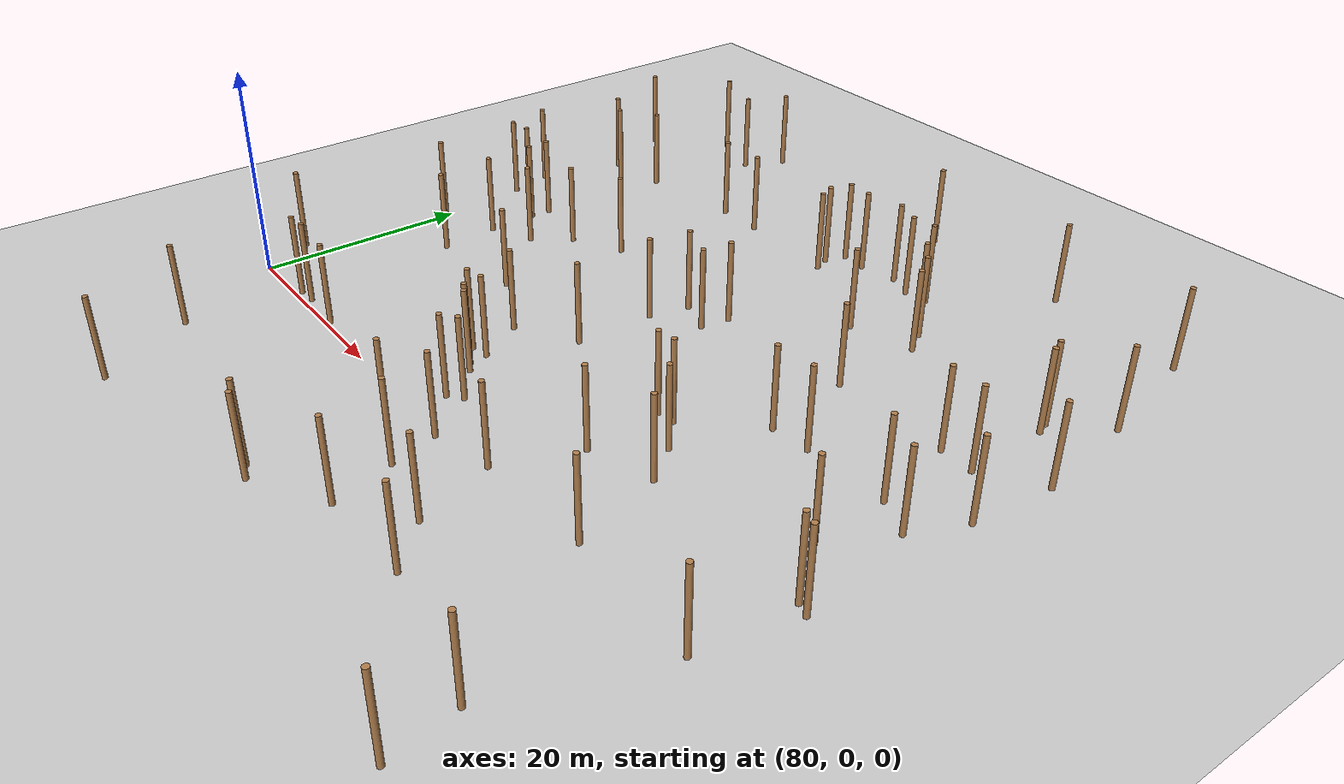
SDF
<sdf version="1.5">
 <world name="padure_tactica">
  <include><uri>model://sun</uri></include>
  <include><uri>model://ground_plane</uri></include>
  <model name="tree_18">
   <static>true</static>
   <pose>110.74 4.19 4.0 0 0 0</pose>
   <link name="link">
    <collision name="collision">
     <geometry><cylinder><radius>0.25</radius><length>8.0</length></cylinder></geometry>
    </collision>
    <visual name="visual">
     <geometry><cylinder><radius>0.25</radius><length>8.0</length></cylinder></geometry>
     <material>
      <script><uri>file://media/materials/scripts/gazebo.material</uri><name>Gazebo/Wood</name></script>
     </material>
    </visual>
   </link>
  </model>
  <model name="tree_19">
   <static>true</static>
   <pose>139.20 -12.13 4.0 0 0 0</pose>
   <link name="link">
    <collision name="collision">
     <geometry><cylinder><radius>0.25</radius><length>8.0</length></cylinder></geometry>
    </collision>
    <visual name="visual">
     <geometry><cylinder><radius>0.25</radius><length>8.0</length></cylinder></geometry>
     <material>
      <script><uri>file://media/materials/scripts/gazebo.material</uri><name>Gazebo/Wood</name></script>
     </material>
    </visual>
   </link>
  </model>
  <model name="tree_41">
   <static>true</static>
   <pose>128.94 21.84 4.0 0 0 0</pose>
   <link name="link">
    <collision name="collision">
     <geometry><cylinder><radius>0.25</radius><length>8.0</length></cylinder></geometry>
    </collision>
    <visual name="visual">
     <geometry><cylinder><radius>0.25</radius><length>8.0</length></cylinder></geometry>
     <material>
      <script><uri>file://media/materials/scripts/gazebo.material</uri><name>Gazebo/Wood</name></script>
     </material>
    </visual>
   </link>
  </model>
  <model name="tree_79">
   <static>true</static>
   <pose>126.15 13.56 4.0 0 0 0</pose>
   <link name="link">
    <collision name="collision">
     <geometry><cylinder><radius>0.25</radius><length>8.0</length></cylinder></geometry>
    </collision>
    <visual name="visual">
     <geometry><cylinder><radius>0.25</radius><length>8.0</length></cylinder></geometry>
     <material>
      <script><uri>file://media/materials/scripts/gazebo.material</uri><name>Gazebo/Wood</name></script>
     </material>
    </visual>
   </link>
  </model>
  <model name="tree_83">
   <static>true</static>
   <pose>109.98 -2.52 4.0 0 0 0</pose>
   <link name="link">
    <collision name="collision">
     <geometry><cylinder><radius>0.25</radius><length>8.0</length></cylinder></geometry>
    </collision>
    <visual name="visual">
     <geometry><cylinder><radius>0.25</radius><length>8.0</length></cylinder></geometry>
     <material>
      <script><uri>file://media/materials/scripts/gazebo.material</uri><name>Gazebo/Wood</name></script>
     </material>
    </visual>
   </link>
  </model>
  <model name="tree_88">
   <static>true</static>
   <pose>104.37 8.63 4.0 0 0 0</pose>
   <link name="link">
    <collision name="collision">
     <geometry><cylinder><radius>0.25</radius><length>8.0</length></cylinder></geometry>
    </collision>
    <visual name="visual">
     <geometry><cylinder><radius>0.25</radius><length>8.0</length></cylinder></geometry>
     <material>
      <script><uri>file://media/materials/scripts/gazebo.material</uri><name>Gazebo/Wood</name></script>
     </material>
    </visual>
   </link>
  </model>
  <model name="tree_116">
   <static>true</static>
   <pose>79.14 28.60 4.0 0 0 0</pose>
   <link name="link">
    <collision name="collision">
     <geometry><cylinder><radius>0.25</radius><length>8.0</length></cylinder></geometry>
    </collision>
    <visual name="visual">
     <geometry><cylinder><radius>0.25</radius><length>8.0</length></cylinder></geometry>
     <material>
      <script><uri>file://media/materials/scripts/gazebo.material</uri><name>Gazebo/Wood</name></script>
     </material>
    </visual>
   </link>
  </model>
  <model name="tree_117">
   <static>true</static>
   <pose>85.27 -10.18 4.0 0 0 0</pose>
   <link name="link">
    <collision name="collision">
     <geometry><cylinder><radius>0.25</radius><length>8.0</length></cylinder></geometry>
    </collision>
    <visual name="visual">
     <geometry><cylinder><radius>0.25</radius><length>8.0</length></cylinder></geometry>
     <material>
      <script><uri>file://media/materials/scripts/gazebo.material</uri><name>Gazebo/Wood</name></script>
     </material>
    </visual>
   </link>
  </model>
  <model name="tree_127">
   <static>true</static>
   <pose>110.02 28.17 4.0 0 0 0</pose>
   <link name="link">
    <collision name="collision">
     <geometry><cylinder><radius>0.25</radius><length>8.0</length></cylinder></geometry>
    </collision>
    <visual name="visual">
     <geometry><cylinder><radius>0.25</radius><length>8.0</length></cylinder></geometry>
     <material>
      <script><uri>file://media/materials/scripts/gazebo.material</uri><name>Gazebo/Wood</name></script>
     </material>
    </visual>
   </link>
  </model>
  <model name="tree_148">
   <static>true</static>
   <pose>90.02 -18.72 4.0 0 0 0</pose>
   <link name="link">
    <collision name="collision">
     <geometry><cylinder><radius>0.25</radius><length>8.0</length></cylinder></geometry>
    </collision>
    <visual name="visual">
     <geometry><cylinder><radius>0.25</radius><length>8.0</length></cylinder></geometry>
     <material>
      <script><uri>file://media/materials/scripts/gazebo.material</uri><name>Gazebo/Wood</name></script>
     </material>
    </visual>
   </link>
  </model>
  <model name="tree_165">
   <static>true</static>
   <pose>119.80 1.09 4.0 0 0 0</pose>
   <link name="link">
    <collision name="collision">
     <geometry><cylinder><radius>0.25</radius><length>8.0</length></cylinder></geometry>
    </collision>
    <visual name="visual">
     <geometry><cylinder><radius>0.25</radius><length>8.0</length></cylinder></geometry>
     <material>
      <script><uri>file://media/materials/scripts/gazebo.material</uri><name>Gazebo/Wood</name></script>
     </material>
    </visual>
   </link>
  </model>
  <model name="tree_200">
   <static>true</static>
   <pose>96.79 43.53 4.0 0 0 0</pose>
   <link name="link">
    <collision name="collision">
     <geometry><cylinder><radius>0.25</radius><length>8.0</length></cylinder></geometry>
    </collision>
    <visual name="visual">
     <geometry><cylinder><radius>0.25</radius><length>8.0</length></cylinder></geometry>
     <material>
      <script><uri>file://media/materials/scripts/gazebo.material</uri><name>Gazebo/Wood</name></script>
     </material>
    </visual>
   </link>
  </model>
  <model name="tree_235">
   <static>true</static>
   <pose>113.91 29.73 4.0 0 0 0</pose>
   <link name="link">
    <collision name="collision">
     <geometry><cylinder><radius>0.25</radius><length>8.0</length></cylinder></geometry>
    </collision>
    <visual name="visual">
     <geometry><cylinder><radius>0.25</radius><length>8.0</length></cylinder></geometry>
     <material>
      <script><uri>file://media/materials/scripts/gazebo.material</uri><name>Gazebo/Wood</name></script>
     </material>
    </visual>
   </link>
  </model>
  <model name="tree_275">
   <static>true</static>
   <pose>106.11 8.97 4.0 0 0 0</pose>
   <link name="link">
    <collision name="collision">
     <geometry><cylinder><radius>0.25</radius><length>8.0</length></cylinder></geometry>
    </collision>
    <visual name="visual">
     <geometry><cylinder><radius>0.25</radius><length>8.0</length></cylinder></geometry>
     <material>
      <script><uri>file://media/materials/scripts/gazebo.material</uri><name>Gazebo/Wood</name></script>
     </material>
    </visual>
   </link>
  </model>
  <model name="tree_279">
   <static>true</static>
   <pose>88.87 52.99 4.0 0 0 0</pose>
   <link name="link">
    <collision name="collision">
     <geometry><cylinder><radius>0.25</radius><length>8.0</length></cylinder></geometry>
    </collision>
    <visual name="visual">
     <geometry><cylinder><radius>0.25</radius><length>8.0</length></cylinder></geometry>
     <material>
      <script><uri>file://media/materials/scripts/gazebo.material</uri><name>Gazebo/Wood</name></script>
     </material>
    </visual>
   </link>
  </model>
  <model name="tree_300">
   <static>true</static>
   <pose>146.11 25.76 4.0 0 0 0</pose>
   <link name="link">
    <collision name="collision">
     <geometry><cylinder><radius>0.25</radius><length>8.0</length></cylinder></geometry>
    </collision>
    <visual name="visual">
     <geometry><cylinder><radius>0.25</radius><length>8.0</length></cylinder></geometry>
     <material>
      <script><uri>file://media/materials/scripts/gazebo.material</uri><name>Gazebo/Wood</name></script>
     </material>
    </visual>
   </link>
  </model>
  <model name="tree_306">
   <static>true</static>
   <pose>124.24 43.46 4.0 0 0 0</pose>
   <link name="link">
    <collision name="collision">
     <geometry><cylinder><radius>0.25</radius><length>8.0</length></cylinder></geometry>
    </collision>
    <visual name="visual">
     <geometry><cylinder><radius>0.25</radius><length>8.0</length></cylinder></geometry>
     <material>
      <script><uri>file://media/materials/scripts/gazebo.material</uri><name>Gazebo/Wood</name></script>
     </material>
    </visual>
   </link>
  </model>
  <model name="tree_325">
   <static>true</static>
   <pose>126.21 -9.82 4.0 0 0 0</pose>
   <link name="link">
    <collision name="collision">
     <geometry><cylinder><radius>0.25</radius><length>8.0</length></cylinder></geometry>
    </collision>
    <visual name="visual">
     <geometry><cylinder><radius>0.25</radius><length>8.0</length></cylinder></geometry>
     <material>
      <script><uri>file://media/materials/scripts/gazebo.material</uri><name>Gazebo/Wood</name></script>
     </material>
    </visual>
   </link>
  </model>
  <model name="tree_329">
   <static>true</static>
   <pose>126.02 41.59 4.0 0 0 0</pose>
   <link name="link">
    <collision name="collision">
     <geometry><cylinder><radius>0.25</radius><length>8.0</length></cylinder></geometry>
    </collision>
    <visual name="visual">
     <geometry><cylinder><radius>0.25</radius><length>8.0</length></cylinder></geometry>
     <material>
      <script><uri>file://media/materials/scripts/gazebo.material</uri><name>Gazebo/Wood</name></script>
     </material>
    </visual>
   </link>
  </model>
  <model name="tree_339">
   <static>true</static>
   <pose>113.97 46.52 4.0 0 0 0</pose>
   <link name="link">
    <collision name="collision">
     <geometry><cylinder><radius>0.25</radius><length>8.0</length></cylinder></geometry>
    </collision>
    <visual name="visual">
     <geometry><cylinder><radius>0.25</radius><length>8.0</length></cylinder></geometry>
     <material>
      <script><uri>file://media/materials/scripts/gazebo.material</uri><name>Gazebo/Wood</name></script>
     </material>
    </visual>
   </link>
  </model>
  <model name="tree_362">
   <static>true</static>
   <pose>138.81 30.49 4.0 0 0 0</pose>
   <link name="link">
    <collision name="collision">
     <geometry><cylinder><radius>0.25</radius><length>8.0</length></cylinder></geometry>
    </collision>
    <visual name="visual">
     <geometry><cylinder><radius>0.25</radius><length>8.0</length></cylinder></geometry>
     <material>
      <script><uri>file://media/materials/scripts/gazebo.material</uri><name>Gazebo/Wood</name></script>
     </material>
    </visual>
   </link>
  </model>
  <model name="tree_365">
   <static>true</static>
   <pose>140.95 15.13 4.0 0 0 0</pose>
   <link name="link">
    <collision name="collision">
     <geometry><cylinder><radius>0.25</radius><length>8.0</length></cylinder></geometry>
    </collision>
    <visual name="visual">
     <geometry><cylinder><radius>0.25</radius><length>8.0</length></cylinder></geometry>
     <material>
      <script><uri>file://media/materials/scripts/gazebo.material</uri><name>Gazebo/Wood</name></script>
     </material>
    </visual>
   </link>
  </model>
  <model name="tree_376">
   <static>true</static>
   <pose>101.43 43.50 4.0 0 0 0</pose>
   <link name="link">
    <collision name="collision">
     <geometry><cylinder><radius>0.25</radius><length>8.0</length></cylinder></geometry>
    </collision>
    <visual name="visual">
     <geometry><cylinder><radius>0.25</radius><length>8.0</length></cylinder></geometry>
     <material>
      <script><uri>file://media/materials/scripts/gazebo.material</uri><name>Gazebo/Wood</name></script>
     </material>
    </visual>
   </link>
  </model>
  <model name="tree_378">
   <static>true</static>
   <pose>144.08 1.36 4.0 0 0 0</pose>
   <link name="link">
    <collision name="collision">
     <geometry><cylinder><radius>0.25</radius><length>8.0</length></cylinder></geometry>
    </collision>
    <visual name="visual">
     <geometry><cylinder><radius>0.25</radius><length>8.0</length></cylinder></geometry>
     <material>
      <script><uri>file://media/materials/scripts/gazebo.material</uri><name>Gazebo/Wood</name></script>
     </material>
    </visual>
   </link>
  </model>
  <model name="tree_380">
   <static>true</static>
   <pose>110.91 44.56 4.0 0 0 0</pose>
   <link name="link">
    <collision name="collision">
     <geometry><cylinder><radius>0.25</radius><length>8.0</length></cylinder></geometry>
    </collision>
    <visual name="visual">
     <geometry><cylinder><radius>0.25</radius><length>8.0</length></cylinder></geometry>
     <material>
      <script><uri>file://media/materials/scripts/gazebo.material</uri><name>Gazebo/Wood</name></script>
     </material>
    </visual>
   </link>
  </model>
  <model name="tree_381">
   <static>true</static>
   <pose>122.33 -6.08 4.0 0 0 0</pose>
   <link name="link">
    <collision name="collision">
     <geometry><cylinder><radius>0.25</radius><length>8.0</length></cylinder></geometry>
    </collision>
    <visual name="visual">
     <geometry><cylinder><radius>0.25</radius><length>8.0</length></cylinder></geometry>
     <material>
      <script><uri>file://media/materials/scripts/gazebo.material</uri><name>Gazebo/Wood</name></script>
     </material>
    </visual>
   </link>
  </model>
  <model name="tree_384">
   <static>true</static>
   <pose>115.13 -4.64 4.0 0 0 0</pose>
   <link name="link">
    <collision name="collision">
     <geometry><cylinder><radius>0.25</radius><length>8.0</length></cylinder></geometry>
    </collision>
    <visual name="visual">
     <geometry><cylinder><radius>0.25</radius><length>8.0</length></cylinder></geometry>
     <material>
      <script><uri>file://media/materials/scripts/gazebo.material</uri><name>Gazebo/Wood</name></script>
     </material>
    </visual>
   </link>
  </model>
  <model name="tree_402">
   <static>true</static>
   <pose>109.16 24.34 4.0 0 0 0</pose>
   <link name="link">
    <collision name="collision">
     <geometry><cylinder><radius>0.25</radius><length>8.0</length></cylinder></geometry>
    </collision>
    <visual name="visual">
     <geometry><cylinder><radius>0.25</radius><length>8.0</length></cylinder></geometry>
     <material>
      <script><uri>file://media/materials/scripts/gazebo.material</uri><name>Gazebo/Wood</name></script>
     </material>
    </visual>
   </link>
  </model>
  <model name="tree_414">
   <static>true</static>
   <pose>78.02 32.96 4.0 0 0 0</pose>
   <link name="link">
    <collision name="collision">
     <geometry><cylinder><radius>0.25</radius><length>8.0</length></cylinder></geometry>
    </collision>
    <visual name="visual">
     <geometry><cylinder><radius>0.25</radius><length>8.0</length></cylinder></geometry>
     <material>
      <script><uri>file://media/materials/scripts/gazebo.material</uri><name>Gazebo/Wood</name></script>
     </material>
    </visual>
   </link>
  </model>
  <model name="tree_427">
   <static>true</static>
   <pose>83.12 39.69 4.0 0 0 0</pose>
   <link name="link">
    <collision name="collision">
     <geometry><cylinder><radius>0.25</radius><length>8.0</length></cylinder></geometry>
    </collision>
    <visual name="visual">
     <geometry><cylinder><radius>0.25</radius><length>8.0</length></cylinder></geometry>
     <material>
      <script><uri>file://media/materials/scripts/gazebo.material</uri><name>Gazebo/Wood</name></script>
     </material>
    </visual>
   </link>
  </model>
  <model name="tree_435">
   <static>true</static>
   <pose>97.33 29.59 4.0 0 0 0</pose>
   <link name="link">
    <collision name="collision">
     <geometry><cylinder><radius>0.25</radius><length>8.0</length></cylinder></geometry>
    </collision>
    <visual name="visual">
     <geometry><cylinder><radius>0.25</radius><length>8.0</length></cylinder></geometry>
     <material>
      <script><uri>file://media/materials/scripts/gazebo.material</uri><name>Gazebo/Wood</name></script>
     </material>
    </visual>
   </link>
  </model>
  <model name="tree_436">
   <static>true</static>
   <pose>96.40 16.85 4.0 0 0 0</pose>
   <link name="link">
    <collision name="collision">
     <geometry><cylinder><radius>0.25</radius><length>8.0</length></cylinder></geometry>
    </collision>
    <visual name="visual">
     <geometry><cylinder><radius>0.25</radius><length>8.0</length></cylinder></geometry>
     <material>
      <script><uri>file://media/materials/scripts/gazebo.material</uri><name>Gazebo/Wood</name></script>
     </material>
    </visual>
   </link>
  </model>
  <model name="tree_437">
   <static>true</static>
   <pose>113.44 26.96 4.0 0 0 0</pose>
   <link name="link">
    <collision name="collision">
     <geometry><cylinder><radius>0.25</radius><length>8.0</length></cylinder></geometry>
    </collision>
    <visual name="visual">
     <geometry><cylinder><radius>0.25</radius><length>8.0</length></cylinder></geometry>
     <material>
      <script><uri>file://media/materials/scripts/gazebo.material</uri><name>Gazebo/Wood</name></script>
     </material>
    </visual>
   </link>
  </model>
  <model name="tree_443">
   <static>true</static>
   <pose>83.35 54.86 4.0 0 0 0</pose>
   <link name="link">
    <collision name="collision">
     <geometry><cylinder><radius>0.25</radius><length>8.0</length></cylinder></geometry>
    </collision>
    <visual name="visual">
     <geometry><cylinder><radius>0.25</radius><length>8.0</length></cylinder></geometry>
     <material>
      <script><uri>file://media/materials/scripts/gazebo.material</uri><name>Gazebo/Wood</name></script>
     </material>
    </visual>
   </link>
  </model>
  <model name="tree_447">
   <static>true</static>
   <pose>92.89 0.44 4.0 0 0 0</pose>
   <link name="link">
    <collision name="collision">
     <geometry><cylinder><radius>0.25</radius><length>8.0</length></cylinder></geometry>
    </collision>
    <visual name="visual">
     <geometry><cylinder><radius>0.25</radius><length>8.0</length></cylinder></geometry>
     <material>
      <script><uri>file://media/materials/scripts/gazebo.material</uri><name>Gazebo/Wood</name></script>
     </material>
    </visual>
   </link>
  </model>
  <model name="tree_464">
   <static>true</static>
   <pose>77.57 4.81 4.0 0 0 0</pose>
   <link name="link">
    <collision name="collision">
     <geometry><cylinder><radius>0.25</radius><length>8.0</length></cylinder></geometry>
    </collision>
    <visual name="visual">
     <geometry><cylinder><radius>0.25</radius><length>8.0</length></cylinder></geometry>
     <material>
      <script><uri>file://media/materials/scripts/gazebo.material</uri><name>Gazebo/Wood</name></script>
     </material>
    </visual>
   </link>
  </model>
  <model name="tree_490">
   <static>true</static>
   <pose>108.66 -13.68 4.0 0 0 0</pose>
   <link name="link">
    <collision name="collision">
     <geometry><cylinder><radius>0.25</radius><length>8.0</length></cylinder></geometry>
    </collision>
    <visual name="visual">
     <geometry><cylinder><radius>0.25</radius><length>8.0</length></cylinder></geometry>
     <material>
      <script><uri>file://media/materials/scripts/gazebo.material</uri><name>Gazebo/Wood</name></script>
     </material>
    </visual>
   </link>
  </model>
  <model name="tree_503">
   <static>true</static>
   <pose>140.24 -18.03 4.0 0 0 0</pose>
   <link name="link">
    <collision name="collision">
     <geometry><cylinder><radius>0.25</radius><length>8.0</length></cylinder></geometry>
    </collision>
    <visual name="visual">
     <geometry><cylinder><radius>0.25</radius><length>8.0</length></cylinder></geometry>
     <material>
      <script><uri>file://media/materials/scripts/gazebo.material</uri><name>Gazebo/Wood</name></script>
     </material>
    </visual>
   </link>
  </model>
  <model name="tree_516">
   <static>true</static>
   <pose>107.36 6.63 4.0 0 0 0</pose>
   <link name="link">
    <collision name="collision">
     <geometry><cylinder><radius>0.25</radius><length>8.0</length></cylinder></geometry>
    </collision>
    <visual name="visual">
     <geometry><cylinder><radius>0.25</radius><length>8.0</length></cylinder></geometry>
     <material>
      <script><uri>file://media/materials/scripts/gazebo.material</uri><name>Gazebo/Wood</name></script>
     </material>
    </visual>
   </link>
  </model>
  <model name="tree_522">
   <static>true</static>
   <pose>90.73 56.93 4.0 0 0 0</pose>
   <link name="link">
    <collision name="collision">
     <geometry><cylinder><radius>0.25</radius><length>8.0</length></cylinder></geometry>
    </collision>
    <visual name="visual">
     <geometry><cylinder><radius>0.25</radius><length>8.0</length></cylinder></geometry>
     <material>
      <script><uri>file://media/materials/scripts/gazebo.material</uri><name>Gazebo/Wood</name></script>
     </material>
    </visual>
   </link>
  </model>
  <model name="tree_549">
   <static>true</static>
   <pose>121.35 37.76 4.0 0 0 0</pose>
   <link name="link">
    <collision name="collision">
     <geometry><cylinder><radius>0.25</radius><length>8.0</length></cylinder></geometry>
    </collision>
    <visual name="visual">
     <geometry><cylinder><radius>0.25</radius><length>8.0</length></cylinder></geometry>
     <material>
      <script><uri>file://media/materials/scripts/gazebo.material</uri><name>Gazebo/Wood</name></script>
     </material>
    </visual>
   </link>
  </model>
  <model name="tree_553">
   <static>true</static>
   <pose>143.96 20.85 4.0 0 0 0</pose>
   <link name="link">
    <collision name="collision">
     <geometry><cylinder><radius>0.25</radius><length>8.0</length></cylinder></geometry>
    </collision>
    <visual name="visual">
     <geometry><cylinder><radius>0.25</radius><length>8.0</length></cylinder></geometry>
     <material>
      <script><uri>file://media/materials/scripts/gazebo.material</uri><name>Gazebo/Wood</name></script>
     </material>
    </visual>
   </link>
  </model>
  <model name="tree_560">
   <static>true</static>
   <pose>109.05 16.69 4.0 0 0 0</pose>
   <link name="link">
    <collision name="collision">
     <geometry><cylinder><radius>0.25</radius><length>8.0</length></cylinder></geometry>
    </collision>
    <visual name="visual">
     <geometry><cylinder><radius>0.25</radius><length>8.0</length></cylinder></geometry>
     <material>
      <script><uri>file://media/materials/scripts/gazebo.material</uri><name>Gazebo/Wood</name></script>
     </material>
    </visual>
   </link>
  </model>
  <model name="tree_581">
   <static>true</static>
   <pose>127.34 39.41 4.0 0 0 0</pose>
   <link name="link">
    <collision name="collision">
     <geometry><cylinder><radius>0.25</radius><length>8.0</length></cylinder></geometry>
    </collision>
    <visual name="visual">
     <geometry><cylinder><radius>0.25</radius><length>8.0</length></cylinder></geometry>
     <material>
      <script><uri>file://media/materials/scripts/gazebo.material</uri><name>Gazebo/Wood</name></script>
     </material>
    </visual>
   </link>
  </model>
  <model name="tree_609">
   <static>true</static>
   <pose>89.91 23.64 4.0 0 0 0</pose>
   <link name="link">
    <collision name="collision">
     <geometry><cylinder><radius>0.25</radius><length>8.0</length></cylinder></geometry>
    </collision>
    <visual name="visual">
     <geometry><cylinder><radius>0.25</radius><length>8.0</length></cylinder></geometry>
     <material>
      <script><uri>file://media/materials/scripts/gazebo.material</uri><name>Gazebo/Wood</name></script>
     </material>
    </visual>
   </link>
  </model>
  <model name="tree_619">
   <static>true</static>
   <pose>141.82 38.58 4.0 0 0 0</pose>
   <link name="link">
    <collision name="collision">
     <geometry><cylinder><radius>0.25</radius><length>8.0</length></cylinder></geometry>
    </collision>
    <visual name="visual">
     <geometry><cylinder><radius>0.25</radius><length>8.0</length></cylinder></geometry>
     <material>
      <script><uri>file://media/materials/scripts/gazebo.material</uri><name>Gazebo/Wood</name></script>
     </material>
    </visual>
   </link>
  </model>
  <model name="tree_620">
   <static>true</static>
   <pose>120.01 46.25 4.0 0 0 0</pose>
   <link name="link">
    <collision name="collision">
     <geometry><cylinder><radius>0.25</radius><length>8.0</length></cylinder></geometry>
    </collision>
    <visual name="visual">
     <geometry><cylinder><radius>0.25</radius><length>8.0</length></cylinder></geometry>
     <material>
      <script><uri>file://media/materials/scripts/gazebo.material</uri><name>Gazebo/Wood</name></script>
     </material>
    </visual>
   </link>
  </model>
  <model name="tree_626">
   <static>true</static>
   <pose>145.90 9.86 4.0 0 0 0</pose>
   <link name="link">
    <collision name="collision">
     <geometry><cylinder><radius>0.25</radius><length>8.0</length></cylinder></geometry>
    </collision>
    <visual name="visual">
     <geometry><cylinder><radius>0.25</radius><length>8.0</length></cylinder></geometry>
     <material>
      <script><uri>file://media/materials/scripts/gazebo.material</uri><name>Gazebo/Wood</name></script>
     </material>
    </visual>
   </link>
  </model>
  <model name="tree_640">
   <static>true</static>
   <pose>106.38 7.20 4.0 0 0 0</pose>
   <link name="link">
    <collision name="collision">
     <geometry><cylinder><radius>0.25</radius><length>8.0</length></cylinder></geometry>
    </collision>
    <visual name="visual">
     <geometry><cylinder><radius>0.25</radius><length>8.0</length></cylinder></geometry>
     <material>
      <script><uri>file://media/materials/scripts/gazebo.material</uri><name>Gazebo/Wood</name></script>
     </material>
    </visual>
   </link>
  </model>
  <model name="tree_647">
   <static>true</static>
   <pose>92.51 27.06 4.0 0 0 0</pose>
   <link name="link">
    <collision name="collision">
     <geometry><cylinder><radius>0.25</radius><length>8.0</length></cylinder></geometry>
    </collision>
    <visual name="visual">
     <geometry><cylinder><radius>0.25</radius><length>8.0</length></cylinder></geometry>
     <material>
      <script><uri>file://media/materials/scripts/gazebo.material</uri><name>Gazebo/Wood</name></script>
     </material>
    </visual>
   </link>
  </model>
  <model name="tree_665">
   <static>true</static>
   <pose>110.20 -14.32 4.0 0 0 0</pose>
   <link name="link">
    <collision name="collision">
     <geometry><cylinder><radius>0.25</radius><length>8.0</length></cylinder></geometry>
    </collision>
    <visual name="visual">
     <geometry><cylinder><radius>0.25</radius><length>8.0</length></cylinder></geometry>
     <material>
      <script><uri>file://media/materials/scripts/gazebo.material</uri><name>Gazebo/Wood</name></script>
     </material>
    </visual>
   </link>
  </model>
  <model name="tree_678">
   <static>true</static>
   <pose>85.56 28.61 4.0 0 0 0</pose>
   <link name="link">
    <collision name="collision">
     <geometry><cylinder><radius>0.25</radius><length>8.0</length></cylinder></geometry>
    </collision>
    <visual name="visual">
     <geometry><cylinder><radius>0.25</radius><length>8.0</length></cylinder></geometry>
     <material>
      <script><uri>file://media/materials/scripts/gazebo.material</uri><name>Gazebo/Wood</name></script>
     </material>
    </visual>
   </link>
  </model>
  <model name="tree_685">
   <static>true</static>
   <pose>86.33 0.60 4.0 0 0 0</pose>
   <link name="link">
    <collision name="collision">
     <geometry><cylinder><radius>0.25</radius><length>8.0</length></cylinder></geometry>
    </collision>
    <visual name="visual">
     <geometry><cylinder><radius>0.25</radius><length>8.0</length></cylinder></geometry>
     <material>
      <script><uri>file://media/materials/scripts/gazebo.material</uri><name>Gazebo/Wood</name></script>
     </material>
    </visual>
   </link>
  </model>
  <model name="tree_697">
   <static>true</static>
   <pose>140.57 22.44 4.0 0 0 0</pose>
   <link name="link">
    <collision name="collision">
     <geometry><cylinder><radius>0.25</radius><length>8.0</length></cylinder></geometry>
    </collision>
    <visual name="visual">
     <geometry><cylinder><radius>0.25</radius><length>8.0</length></cylinder></geometry>
     <material>
      <script><uri>file://media/materials/scripts/gazebo.material</uri><name>Gazebo/Wood</name></script>
     </material>
    </visual>
   </link>
  </model>
  <model name="tree_715">
   <static>true</static>
   <pose>142.64 55.19 4.0 0 0 0</pose>
   <link name="link">
    <collision name="collision">
     <geometry><cylinder><radius>0.25</radius><length>8.0</length></cylinder></geometry>
    </collision>
    <visual name="visual">
     <geometry><cylinder><radius>0.25</radius><length>8.0</length></cylinder></geometry>
     <material>
      <script><uri>file://media/materials/scripts/gazebo.material</uri><name>Gazebo/Wood</name></script>
     </material>
    </visual>
   </link>
  </model>
  <model name="tree_727">
   <static>true</static>
   <pose>109.48 3.18 4.0 0 0 0</pose>
   <link name="link">
    <collision name="collision">
     <geometry><cylinder><radius>0.25</radius><length>8.0</length></cylinder></geometry>
    </collision>
    <visual name="visual">
     <geometry><cylinder><radius>0.25</radius><length>8.0</length></cylinder></geometry>
     <material>
      <script><uri>file://media/materials/scripts/gazebo.material</uri><name>Gazebo/Wood</name></script>
     </material>
    </visual>
   </link>
  </model>
  <model name="tree_807">
   <static>true</static>
   <pose>114.58 56.12 4.0 0 0 0</pose>
   <link name="link">
    <collision name="collision">
     <geometry><cylinder><radius>0.25</radius><length>8.0</length></cylinder></geometry>
    </collision>
    <visual name="visual">
     <geometry><cylinder><radius>0.25</radius><length>8.0</length></cylinder></geometry>
     <material>
      <script><uri>file://media/materials/scripts/gazebo.material</uri><name>Gazebo/Wood</name></script>
     </material>
    </visual>
   </link>
  </model>
  <model name="tree_847">
   <static>true</static>
   <pose>146.90 33.63 4.0 0 0 0</pose>
   <link name="link">
    <collision name="collision">
     <geometry><cylinder><radius>0.25</radius><length>8.0</length></cylinder></geometry>
    </collision>
    <visual name="visual">
     <geometry><cylinder><radius>0.25</radius><length>8.0</length></cylinder></geometry>
     <material>
      <script><uri>file://media/materials/scripts/gazebo.material</uri><name>Gazebo/Wood</name></script>
     </material>
    </visual>
   </link>
  </model>
  <model name="tree_863">
   <static>true</static>
   <pose>141.99 30.38 4.0 0 0 0</pose>
   <link name="link">
    <collision name="collision">
     <geometry><cylinder><radius>0.25</radius><length>8.0</length></cylinder></geometry>
    </collision>
    <visual name="visual">
     <geometry><cylinder><radius>0.25</radius><length>8.0</length></cylinder></geometry>
     <material>
      <script><uri>file://media/materials/scripts/gazebo.material</uri><name>Gazebo/Wood</name></script>
     </material>
    </visual>
   </link>
  </model>
  <model name="tree_871">
   <static>true</static>
   <pose>85.69 21.71 4.0 0 0 0</pose>
   <link name="link">
    <collision name="collision">
     <geometry><cylinder><radius>0.25</radius><length>8.0</length></cylinder></geometry>
    </collision>
    <visual name="visual">
     <geometry><cylinder><radius>0.25</radius><length>8.0</length></cylinder></geometry>
     <material>
      <script><uri>file://media/materials/scripts/gazebo.material</uri><name>Gazebo/Wood</name></script>
     </material>
    </visual>
   </link>
  </model>
  <model name="tree_875">
   <static>true</static>
   <pose>116.78 -10.32 4.0 0 0 0</pose>
   <link name="link">
    <collision name="collision">
     <geometry><cylinder><radius>0.25</radius><length>8.0</length></cylinder></geometry>
    </collision>
    <visual name="visual">
     <geometry><cylinder><radius>0.25</radius><length>8.0</length></cylinder></geometry>
     <material>
      <script><uri>file://media/materials/scripts/gazebo.material</uri><name>Gazebo/Wood</name></script>
     </material>
    </visual>
   </link>
  </model>
  <model name="tree_888">
   <static>true</static>
   <pose>144.72 10.26 4.0 0 0 0</pose>
   <link name="link">
    <collision name="collision">
     <geometry><cylinder><radius>0.25</radius><length>8.0</length></cylinder></geometry>
    </collision>
    <visual name="visual">
     <geometry><cylinder><radius>0.25</radius><length>8.0</length></cylinder></geometry>
     <material>
      <script><uri>file://media/materials/scripts/gazebo.material</uri><name>Gazebo/Wood</name></script>
     </material>
    </visual>
   </link>
  </model>
  <model name="tree_896">
   <static>true</static>
   <pose>128.57 10.31 4.0 0 0 0</pose>
   <link name="link">
    <collision name="collision">
     <geometry><cylinder><radius>0.25</radius><length>8.0</length></cylinder></geometry>
    </collision>
    <visual name="visual">
     <geometry><cylinder><radius>0.25</radius><length>8.0</length></cylinder></geometry>
     <material>
      <script><uri>file://media/materials/scripts/gazebo.material</uri><name>Gazebo/Wood</name></script>
     </material>
    </visual>
   </link>
  </model>
  <model name="tree_901">
   <static>true</static>
   <pose>122.25 46.52 4.0 0 0 0</pose>
   <link name="link">
    <collision name="collision">
     <geometry><cylinder><radius>0.25</radius><length>8.0</length></cylinder></geometry>
    </collision>
    <visual name="visual">
     <geometry><cylinder><radius>0.25</radius><length>8.0</length></cylinder></geometry>
     <material>
      <script><uri>file://media/materials/scripts/gazebo.material</uri><name>Gazebo/Wood</name></script>
     </material>
    </visual>
   </link>
  </model>
  <model name="tree_922">
   <static>true</static>
   <pose>103.58 13.30 4.0 0 0 0</pose>
   <link name="link">
    <collision name="collision">
     <geometry><cylinder><radius>0.25</radius><length>8.0</length></cylinder></geometry>
    </collision>
    <visual name="visual">
     <geometry><cylinder><radius>0.25</radius><length>8.0</length></cylinder></geometry>
     <material>
      <script><uri>file://media/materials/scripts/gazebo.material</uri><name>Gazebo/Wood</name></script>
     </material>
    </visual>
   </link>
  </model>
  <model name="tree_924">
   <static>true</static>
   <pose>121.81 15.78 4.0 0 0 0</pose>
   <link name="link">
    <collision name="collision">
     <geometry><cylinder><radius>0.25</radius><length>8.0</length></cylinder></geometry>
    </collision>
    <visual name="visual">
     <geometry><cylinder><radius>0.25</radius><length>8.0</length></cylinder></geometry>
     <material>
      <script><uri>file://media/materials/scripts/gazebo.material</uri><name>Gazebo/Wood</name></script>
     </material>
    </visual>
   </link>
  </model>
  <model name="tree_942">
   <static>true</static>
   <pose>141.40 39.75 4.0 0 0 0</pose>
   <link name="link">
    <collision name="collision">
     <geometry><cylinder><radius>0.25</radius><length>8.0</length></cylinder></geometry>
    </collision>
    <visual name="visual">
     <geometry><cylinder><radius>0.25</radius><length>8.0</length></cylinder></geometry>
     <material>
      <script><uri>file://media/materials/scripts/gazebo.material</uri><name>Gazebo/Wood</name></script>
     </material>
    </visual>
   </link>
  </model>
  <model name="tree_944">
   <static>true</static>
   <pose>111.56 46.65 4.0 0 0 0</pose>
   <link name="link">
    <collision name="collision">
     <geometry><cylinder><radius>0.25</radius><length>8.0</length></cylinder></geometry>
    </collision>
    <visual name="visual">
     <geometry><cylinder><radius>0.25</radius><length>8.0</length></cylinder></geometry>
     <material>
      <script><uri>file://media/materials/scripts/gazebo.material</uri><name>Gazebo/Wood</name></script>
     </material>
    </visual>
   </link>
  </model>
  <model name="tree_962">
   <static>true</static>
   <pose>145.30 43.82 4.0 0 0 0</pose>
   <link name="link">
    <collision name="collision">
     <geometry><cylinder><radius>0.25</radius><length>8.0</length></cylinder></geometry>
    </collision>
    <visual name="visual">
     <geometry><cylinder><radius>0.25</radius><length>8.0</length></cylinder></geometry>
     <material>
      <script><uri>file://media/materials/scripts/gazebo.material</uri><name>Gazebo/Wood</name></script>
     </material>
    </visual>
   </link>
  </model>
  <model name="tree_965">
   <static>true</static>
   <pose>117.59 47.21 4.0 0 0 0</pose>
   <link name="link">
    <collision name="collision">
     <geometry><cylinder><radius>0.25</radius><length>8.0</length></cylinder></geometry>
    </collision>
    <visual name="visual">
     <geometry><cylinder><radius>0.25</radius><length>8.0</length></cylinder></geometry>
     <material>
      <script><uri>file://media/materials/scripts/gazebo.material</uri><name>Gazebo/Wood</name></script>
     </material>
    </visual>
   </link>
  </model>
  <model name="tree_982">
   <static>true</static>
   <pose>122.47 8.41 4.0 0 0 0</pose>
   <link name="link">
    <collision name="collision">
     <geometry><cylinder><radius>0.25</radius><length>8.0</length></cylinder></geometry>
    </collision>
    <visual name="visual">
     <geometry><cylinder><radius>0.25</radius><length>8.0</length></cylinder></geometry>
     <material>
      <script><uri>file://media/materials/scripts/gazebo.material</uri><name>Gazebo/Wood</name></script>
     </material>
    </visual>
   </link>
  </model>
  <model name="tree_991">
   <static>true</static>
   <pose>80.29 41.42 4.0 0 0 0</pose>
   <link name="link">
    <collision name="collision">
     <geometry><cylinder><radius>0.25</radius><length>8.0</length></cylinder></geometry>
    </collision>
    <visual name="visual">
     <geometry><cylinder><radius>0.25</radius><length>8.0</length></cylinder></geometry>
     <material>
      <script><uri>file://media/materials/scripts/gazebo.material</uri><name>Gazebo/Wood</name></script>
     </material>
    </visual>
   </link>
  </model>
  <model name="tree_998">
   <static>true</static>
   <pose>127.56 30.48 4.0 0 0 0</pose>
   <link name="link">
    <collision name="collision">
     <geometry><cylinder><radius>0.25</radius><length>8.0</length></cylinder></geometry>
    </collision>
    <visual name="visual">
     <geometry><cylinder><radius>0.25</radius><length>8.0</length></cylinder></geometry>
     <material>
      <script><uri>file://media/materials/scripts/gazebo.material</uri><name>Gazebo/Wood</name></script>
     </material>
    </visual>
   </link>
  </model>
  <model name="tree_999">
   <static>true</static>
   <pose>132.63 22.16 4.0 0 0 0</pose>
   <link name="link">
    <collision name="collision">
     <geometry><cylinder><radius>0.25</radius><length>8.0</length></cylinder></geometry>
    </collision>
    <visual name="visual">
     <geometry><cylinder><radius>0.25</radius><length>8.0</length></cylinder></geometry>
     <material>
      <script><uri>file://media/materials/scripts/gazebo.material</uri><name>Gazebo/Wood</name></script>
     </material>
    </visual>
   </link>
  </model>
  <model name="tree_1007">
   <static>true</static>
   <pose>123.50 16.02 4.0 0 0 0</pose>
   <link name="link">
    <collision name="collision">
     <geometry><cylinder><radius>0.25</radius><length>8.0</length></cylinder></geometry>
    </collision>
    <visual name="visual">
     <geometry><cylinder><radius>0.25</radius><length>8.0</length></cylinder></geometry>
     <material>
      <script><uri>file://media/materials/scripts/gazebo.material</uri><name>Gazebo/Wood</name></script>
     </material>
    </visual>
   </link>
  </model>
  <model name="tree_1032">
   <static>true</static>
   <pose>85.59 26.52 4.0 0 0 0</pose>
   <link name="link">
    <collision name="collision">
     <geometry><cylinder><radius>0.25</radius><length>8.0</length></cylinder></geometry>
    </collision>
    <visual name="visual">
     <geometry><cylinder><radius>0.25</radius><length>8.0</length></cylinder></geometry>
     <material>
      <script><uri>file://media/materials/scripts/gazebo.material</uri><name>Gazebo/Wood</name></script>
     </material>
    </visual>
   </link>
  </model>
  <model name="tree_1045">
   <static>true</static>
   <pose>113.85 -0.22 4.0 0 0 0</pose>
   <link name="link">
    <collision name="collision">
     <geometry><cylinder><radius>0.25</radius><length>8.0</length></cylinder></geometry>
    </collision>
    <visual name="visual">
     <geometry><cylinder><radius>0.25</radius><length>8.0</length></cylinder></geometry>
     <material>
      <script><uri>file://media/materials/scripts/gazebo.material</uri><name>Gazebo/Wood</name></script>
     </material>
    </visual>
   </link>
  </model>
  <model name="tree_1059">
   <static>true</static>
   <pose>129.34 56.42 4.0 0 0 0</pose>
   <link name="link">
    <collision name="collision">
     <geometry><cylinder><radius>0.25</radius><length>8.0</length></cylinder></geometry>
    </collision>
    <visual name="visual">
     <geometry><cylinder><radius>0.25</radius><length>8.0</length></cylinder></geometry>
     <material>
      <script><uri>file://media/materials/scripts/gazebo.material</uri><name>Gazebo/Wood</name></script>
     </material>
    </visual>
   </link>
  </model>
  <model name="tree_1068">
   <static>true</static>
   <pose>88.15 0.74 4.0 0 0 0</pose>
   <link name="link">
    <collision name="collision">
     <geometry><cylinder><radius>0.25</radius><length>8.0</length></cylinder></geometry>
    </collision>
    <visual name="visual">
     <geometry><cylinder><radius>0.25</radius><length>8.0</length></cylinder></geometry>
     <material>
      <script><uri>file://media/materials/scripts/gazebo.material</uri><name>Gazebo/Wood</name></script>
     </material>
    </visual>
   </link>
  </model>
  <model name="tree_1079">
   <static>true</static>
   <pose>111.48 43.03 4.0 0 0 0</pose>
   <link name="link">
    <collision name="collision">
     <geometry><cylinder><radius>0.25</radius><length>8.0</length></cylinder></geometry>
    </collision>
    <visual name="visual">
     <geometry><cylinder><radius>0.25</radius><length>8.0</length></cylinder></geometry>
     <material>
      <script><uri>file://media/materials/scripts/gazebo.material</uri><name>Gazebo/Wood</name></script>
     </material>
    </visual>
   </link>
  </model>
  <model name="tree_1084">
   <static>true</static>
   <pose>81.36 28.88 4.0 0 0 0</pose>
   <link name="link">
    <collision name="collision">
     <geometry><cylinder><radius>0.25</radius><length>8.0</length></cylinder></geometry>
    </collision>
    <visual name="visual">
     <geometry><cylinder><radius>0.25</radius><length>8.0</length></cylinder></geometry>
     <material>
      <script><uri>file://media/materials/scripts/gazebo.material</uri><name>Gazebo/Wood</name></script>
     </material>
    </visual>
   </link>
  </model>
  <model name="tree_1085">
   <static>true</static>
   <pose>86.26 16.04 4.0 0 0 0</pose>
   <link name="link">
    <collision name="collision">
     <geometry><cylinder><radius>0.25</radius><length>8.0</length></cylinder></geometry>
    </collision>
    <visual name="visual">
     <geometry><cylinder><radius>0.25</radius><length>8.0</length></cylinder></geometry>
     <material>
      <script><uri>file://media/materials/scripts/gazebo.material</uri><name>Gazebo/Wood</name></script>
     </material>
    </visual>
   </link>
  </model>
  <model name="tree_1092">
   <static>true</static>
   <pose>77.18 48.88 4.0 0 0 0</pose>
   <link name="link">
    <collision name="collision">
     <geometry><cylinder><radius>0.25</radius><length>8.0</length></cylinder></geometry>
    </collision>
    <visual name="visual">
     <geometry><cylinder><radius>0.25</radius><length>8.0</length></cylinder></geometry>
     <material>
      <script><uri>file://media/materials/scripts/gazebo.material</uri><name>Gazebo/Wood</name></script>
     </material>
    </visual>
   </link>
  </model>
  <model name="tree_1141">
   <static>true</static>
   <pose>86.49 42.12 4.0 0 0 0</pose>
   <link name="link">
    <collision name="collision">
     <geometry><cylinder><radius>0.25</radius><length>8.0</length></cylinder></geometry>
    </collision>
    <visual name="visual">
     <geometry><cylinder><radius>0.25</radius><length>8.0</length></cylinder></geometry>
     <material>
      <script><uri>file://media/materials/scripts/gazebo.material</uri><name>Gazebo/Wood</name></script>
     </material>
    </visual>
   </link>
  </model>
  <model name="tree_1152">
   <static>true</static>
   <pose>79.36 19.77 4.0 0 0 0</pose>
   <link name="link">
    <collision name="collision">
     <geometry><cylinder><radius>0.25</radius><length>8.0</length></cylinder></geometry>
    </collision>
    <visual name="visual">
     <geometry><cylinder><radius>0.25</radius><length>8.0</length></cylinder></geometry>
     <material>
      <script><uri>file://media/materials/scripts/gazebo.material</uri><name>Gazebo/Wood</name></script>
     </material>
    </visual>
   </link>
  </model>
  <model name="tree_1171">
   <static>true</static>
   <pose>131.11 1.86 4.0 0 0 0</pose>
   <link name="link">
    <collision name="collision">
     <geometry><cylinder><radius>0.25</radius><length>8.0</length></cylinder></geometry>
    </collision>
    <visual name="visual">
     <geometry><cylinder><radius>0.25</radius><length>8.0</length></cylinder></geometry>
     <material>
      <script><uri>file://media/materials/scripts/gazebo.material</uri><name>Gazebo/Wood</name></script>
     </material>
    </visual>
   </link>
  </model>
 </world>
</sdf>
